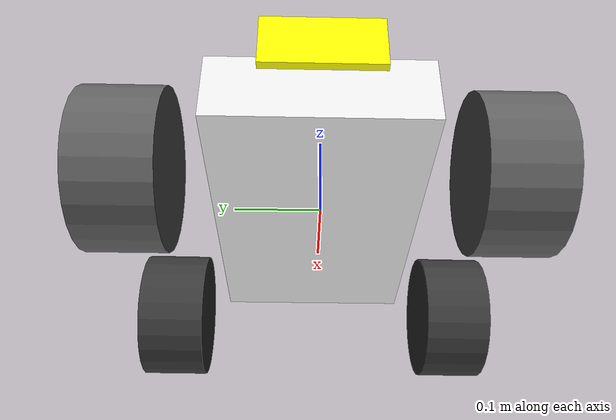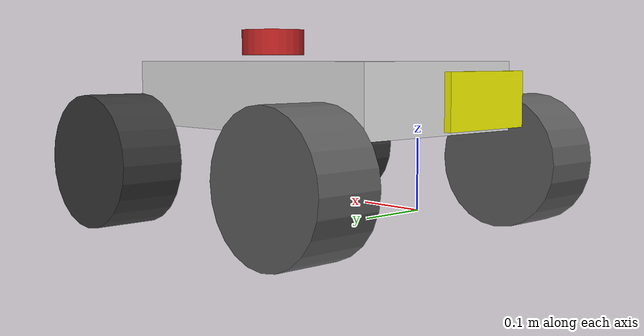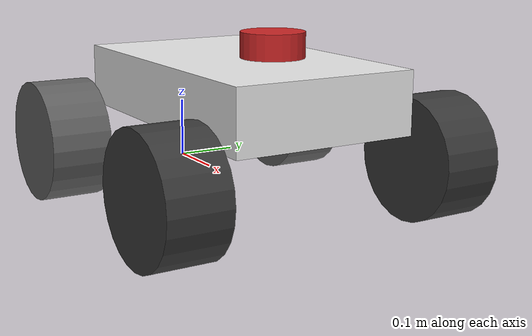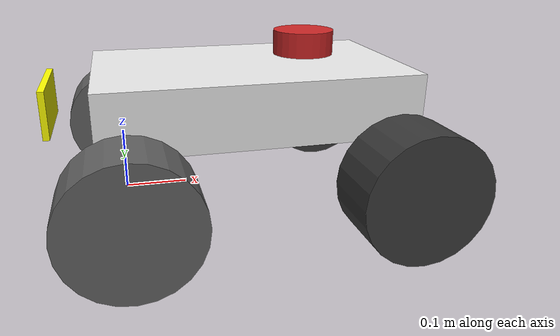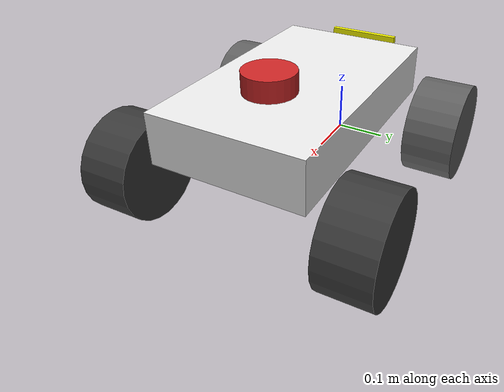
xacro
<?xml version="1.0"?>
<!-- URDF of Robot Simulation -->
<robot xmlns:xacro="http://www.ros.org/wiki/xacro"  name="ackerman_drive">
    <!-- Physical Description -->
    <xacro:include filename="bot_base.xacro" />
    <!-- Simulation -->
    <xacro:include filename="gz_ackermann_core.xacro" />
    <!-- lidar -->
    <xacro:include filename="lidar.xacro" />
</robot>

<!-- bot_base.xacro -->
<robot xmlns:xacro="http://www.ros.org/wiki/xacro">

    <xacro:property name="body_mass" value="0.7" />
    <xacro:property name="body_width" value="0.3" />
    <xacro:property name="body_length" value="0.10" />
    <xacro:property name="body_depth" value="0.75" />

    <xacro:property name="wheel_radius" value="0.1" />
    <xacro:property name="wheel_thickness" value="0.1" />
    <xacro:property name="wheel_mass" value="0.3" />
    <xacro:property name="steering_mass" value="0.01" />

    <!-- BASE -->
    <link name="base_footprint">
            <origin xyz="0 0 0" rpy="0 0 0" />
    </link>

    <link name="base_link">
    </link>
    <joint name="base_joint" type="fixed">
        <parent link="base_footprint" />
        <child link="base_link" />
        <origin xyz="0.0 0.0 0.0" rpy="0 0 0" />
    </joint>

    <link name="chassis_link">
        <inertial>
            <origin xyz="0.0374140021041951 -0.000373005187591258 -0.0771282894414029" rpy="0 0 0" />
            <mass value="24.73" />
            <inertia ixx="${body_mass/12 * (body_width*body_width + body_length*body_length)}"
                ixy="0" ixz="0"
                iyy="${body_mass/12 * (body_length*body_length + body_depth*body_depth)}" iyz="0"
                izz="${body_mass/12 * (body_width*body_width + body_depth*body_depth)}" />
        </inertial>
        <visual>
            <origin xyz="0 0 0" rpy="0 0 0" />
            <geometry>
                <box size="0.5 0.3 0.10" />
            </geometry>
        </visual>
        <collision>
            <origin xyz="0.07 0 -0.05" rpy="0 0 0" />
            <geometry>
                <box size="0.5 0.3 0.10" />
            </geometry>
        </collision>
    </link>
    <joint name="chassis_joint" type="fixed">
        <parent link="base_link" />
        <child link="chassis_link" />
        <origin xyz="0.2078 0.0 0.1555" rpy="0 0 0" />
    </joint>

    <!-- FRONT LEFT WHEEL -->
    <link name="fr_left_steer_link">
        <inertial>
            <origin xyz="-0.0002776492198312 0.0163539773588368 4.97346169803237E-09" rpy="0 0 0" />
            <mass value="${steering_mass}" />
            <inertia
                ixx="${steering_mass/12*(3*wheel_radius*wheel_radius + wheel_thickness*wheel_thickness)}"
                ixy="0" ixz="0"
                iyy="${steering_mass/12*(3*wheel_radius*wheel_radius + wheel_thickness*wheel_thickness)}"
                iyz="0" izz="${steering_mass/2 * wheel_radius*wheel_radius}" />
        </inertial>
    </link>

    <joint name="fr_left_steer_joint" type="revolute">
        <origin xyz="0.2 0.23 -0.1" rpy="0 0 0" />
        <parent link="chassis_link" />
        <child link="fr_left_steer_link" />
        <axis xyz="0 0 1" />
        <limit upper="0.6" lower="-0.6" effort="-1.0" velocity="-1.0" />
    </joint>

    <link name="fr_left_wheel_link">
        <inertial>
            <origin xyz="-3.5837499634539E-10 4.97346158701006E-09 -0.016356334080185" rpy="0 0 0" />
            <mass value="${wheel_mass}" />
            <inertia
                ixx="${wheel_mass/12*(3*wheel_radius*wheel_radius + wheel_thickness*wheel_thickness)}"
                ixy="0" ixz="0"
                iyy="${wheel_mass/12*(3*wheel_radius*wheel_radius + wheel_thickness*wheel_thickness)}"
                iyz="0" izz="${wheel_mass/2 * wheel_radius*wheel_radius}" />
        </inertial>
        <visual>
            <origin xyz="0 0 0" rpy="0 0 0" />
            <geometry>
                <cylinder radius="${wheel_radius}" length="${wheel_thickness}" />
            </geometry>
            <material name="">
                <color rgba="0.223529411764706 0.223529411764706 0.223529411764706 1" />
            </material>
        </visual>
        <collision>
            <origin xyz="0 0 0" rpy="0 0 0" />
            <geometry>
                <cylinder radius="${wheel_radius}" length="${wheel_thickness}" />
            </geometry>
        </collision>
    </link>

    <joint name="fr_left_wheel_joint" type="continuous">
        <origin xyz="0 0 0" rpy="1.5708 0 0.016976" />
        <parent link="fr_left_steer_link" />
        <child link="fr_left_wheel_link" />
        <axis xyz="0 0 -1" />
        <dynamics friction="0.1" damping="0.2" />
        <limit lower="-3.14159" upper="3.14159" effort="200" velocity="-1" />

    </joint>

    <!-- FRONT RIGHT WHEEL -->
    <link name="fr_right_steer_link">
        <inertial>
            <origin xyz="0.000274981985673328 -0.0163540222836661 -3.24802407192237E-11" rpy="0 0 0" />
            <mass value="${steering_mass}" />
            <inertia
                ixx="${steering_mass/12*(3*wheel_radius*wheel_radius + wheel_thickness*wheel_thickness)}"
                ixy="0" ixz="0"
                iyy="${steering_mass/12*(3*wheel_radius*wheel_radius + wheel_thickness*wheel_thickness)}"
                iyz="0" izz="${steering_mass/2 * wheel_radius*wheel_radius}" />
        </inertial>
    </link>
    <joint name="fr_right_steer_joint" type="revolute">
        <origin xyz="0.2 -0.23 -0.1" rpy="0 0 0" />
        <parent link="chassis_link" />
        <child link="fr_right_steer_link" />
        <axis xyz="0 0 1" />
        <limit upper="0.6" lower="-0.6" effort="-1.0" velocity="-1.0" />
    </joint>
    <link name="fr_right_wheel_link">
        <inertial>
            <origin xyz="0.00027498198567355 3.24801296969213E-11 -0.0163540222836661" rpy="0 0 0" />
            <mass value="${wheel_mass}" />
            <inertia
                ixx="${wheel_mass/12*(3*wheel_radius*wheel_radius + wheel_thickness*wheel_thickness)}"
                ixy="0" ixz="0"
                iyy="${wheel_mass/12*(3*wheel_radius*wheel_radius + wheel_thickness*wheel_thickness)}"
                iyz="0" izz="${wheel_mass/2 * wheel_radius*wheel_radius}" />
        </inertial>
        <visual>
            <origin xyz="0 0 0" rpy="0 0 0" />
            <geometry>
                <cylinder radius="${wheel_radius}" length="${wheel_thickness}" />
            </geometry>
            <material name="">
                <color rgba="0.223529411764706 0.223529411764706 0.223529411764706 1" />
            </material>
        </visual>
        <collision>
            <origin xyz="0 0 0" rpy="0 0 0" />
            <geometry>
                <cylinder radius="${wheel_radius}" length="${wheel_thickness}" />
            </geometry>
        </collision>
    </link>
    <joint name="fr_right_wheel_joint" type="continuous">
        <origin xyz="0 0 0" rpy="-1.5708 0 0.016976" />
        <parent link="fr_right_steer_link" />
        <child link="fr_right_wheel_link" />
        <axis xyz="0 0 1" />
        <dynamics friction="0.1" damping="0.2" />
        <limit lower="-3.14159" upper="3.14159" effort="200" velocity="-1" />

    </joint>

    <!-- REAR LEFT WHEEL -->
    <link name="re_left_wheel_link">
        <inertial>
            <origin xyz="1.245E-09 1.7252E-06 -0.010284" rpy="0 0 0" />
            <mass value="${wheel_mass}" />
            <inertia
                ixx="${wheel_mass/12*(3*wheel_radius*wheel_radius + wheel_thickness*wheel_thickness)}"
                ixy="0" ixz="0"
                iyy="${wheel_mass/12*(3*wheel_radius*wheel_radius + wheel_thickness*wheel_thickness)}"
                iyz="0" izz="${wheel_mass/2 * wheel_radius*wheel_radius}" />
        </inertial>
        <visual>
            <origin xyz="0 0 0" rpy="0 0 0" />
            <geometry>
                <cylinder radius="${wheel_radius}" length="${wheel_thickness}" />
            </geometry>
            <material name="">
                <color rgba="0.37647 0.37647 0.37647 1" />
            </material>
        </visual>
        <collision>
            <origin xyz="0 0 0" rpy="0 0 0" />
            <geometry>
                <cylinder radius="${wheel_radius}" length="${wheel_thickness}" />
            </geometry>
        </collision>
    </link>
    <joint name="re_left_wheel_joint" type="continuous">
        <origin xyz="-0.2078 0.23 -0.1" rpy="1.5708 0 0" />
        <parent link="chassis_link" />
        <child link="re_left_wheel_link" />
        <axis xyz="0 0 -1" />
        <dynamics friction="0.1" damping="0.2" />
        <limit lower="-3.14159" upper="3.14159" effort="70" velocity="-1" />

    </joint>

    <!-- REAR RIGHT WHEEL -->
    <link name="re_right_wheel_link">
        <inertial>
            <origin xyz="0 0 0" rpy="0 0 0" />
            <mass value="${wheel_mass}" />
            <inertia
                ixx="${wheel_mass/12*(3*wheel_radius*wheel_radius + wheel_thickness*wheel_thickness)}"
                ixy="0" ixz="0"
                iyy="${wheel_mass/12*(3*wheel_radius*wheel_radius + wheel_thickness*wheel_thickness)}"
                iyz="0" izz="${wheel_mass/2 * wheel_radius*wheel_radius}" />
        </inertial>
        <visual>
            <origin xyz="0 0 0" rpy="0 0 0" />
            <geometry>
                <cylinder radius="${wheel_radius}" length="${wheel_thickness}" />
            </geometry>
            <material name="">
                <color rgba="0.37647 0.37647 0.37647 1" />
            </material>
        </visual>
        <collision>
            <origin xyz="0 0 0" rpy="0 0 0" />
            <geometry>
                <cylinder radius="${wheel_radius}" length="${wheel_thickness}" />
            </geometry>
        </collision>
    </link>
    <joint name="re_right_wheel_joint" type="continuous">
        <origin xyz="-0.2078 -0.23 -0.1" rpy="-1.5708 0 0" />
        <parent link="chassis_link" />
        <child link="re_right_wheel_link" />
        <axis xyz="0 0 1" />

        <dynamics friction="0.1" damping="0.2" />
        <limit lower="-3.14159" upper="3.14159" effort="70" velocity="-1" />

    </joint>
</robot>

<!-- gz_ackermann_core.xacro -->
<robot xmlns:xacro="http://www.ros.org/wiki/xacro">
    <!-- GAZEBO COLOUR -->
    <!-- Instead, we need to add gazebo tags for our links that refer to Gazebo materials -->
    <gazebo reference="chassis_link">
        <material>Gazebo/White</material>
        <mu1>0.5</mu1>
        <mu2>0.5</mu2>
    </gazebo>
    <gazebo reference="fr_left_wheel_link">
        <material>Gazebo/Grey</material>
        <mu1>1</mu1>
        <mu2>1</mu2>
    </gazebo>
    <gazebo reference="fr_right_wheel_link">
        <material>Gazebo/Grey</material>
        <mu1>1</mu1>
        <mu2>1</mu2>
    </gazebo>
    <gazebo reference="re_left_wheel_link">
        <material>Gazebo/Grey</material>
        <mu1>1</mu1>
        <mu2>1</mu2>
    </gazebo>
    <gazebo reference="re_right_wheel_link">
        <material>Gazebo/Grey</material>
        <mu1>1</mu1>
        <mu2>1</mu2>
    </gazebo>
    <gazebo reference="virtual_steer_link">
        <material>Gazebo/Yellow</material>
    </gazebo>

    <!-- JOINT STATE PUBLISHER -->
    <!-- Gazebo requires the use of plugins to interact with other systems such as ROS. -->
    <gazebo>
        <plugin name="gazebo_ros_joint_state_publisher"
            filename="libgazebo_ros_joint_state_publisher.so">
            <update_rate>100</update_rate>
            <joint_name>fr_right_steer_joint</joint_name>
            <joint_name>fr_right_wheel_joint</joint_name>
            <joint_name>fr_left_steer_joint</joint_name>
            <joint_name>fr_left_wheel_joint</joint_name>
            <joint_name>re_right_wheel_joint</joint_name>
            <joint_name>re_left_wheel_joint</joint_name>
            <joint_name>virtual_steering_wheel_joint</joint_name>
        </plugin>
    </gazebo>

    <!-- This plugin will read a JointTrajectory message from the /set_joint_trajectory topic
            and move the machine accordingly. It's a bit clunky but it works. -->
    <gazebo>
        <plugin name="gazebo_ros_joint_pose_trajectory"
            filename="libgazebo_ros_joint_pose_trajectory.so">
            <update_rate>4</update_rate>
        </plugin>
    </gazebo>

    <!-- ACKERMANN DRIVE PLUGIN -->
    <gazebo>
        <plugin name='gazebo_ackermann_drive' filename='libgazebo_ros_ackermann_drive.so'>
            <ros>
            </ros>

            <update_rate>100.0</update_rate>

            <!-- wheels -->
            <front_left_joint>fr_left_wheel_joint</front_left_joint>
            <front_right_joint>fr_right_wheel_joint</front_right_joint>
            <rear_left_joint>re_left_wheel_joint</rear_left_joint>
            <rear_right_joint>re_right_wheel_joint</rear_right_joint>
            <left_steering_joint>fr_left_steer_joint</left_steering_joint>
            <right_steering_joint>fr_right_steer_joint</right_steering_joint>
            <steering_wheel_joint>virtual_steering_wheel_joint</steering_wheel_joint>

            <!-- Max absolute steer angle for tyre in radians-->
            <!-- Any cmd_vel angular z greater than this would be capped -->
            <max_steer>0.5</max_steer>

            <!-- Max absolute steering angle of steering wheel -->
            <max_steering_angle>2.</max_steering_angle>

            <!-- Max absolute linear speed in m/s -->
            <max_speed>10</max_speed>

            <!-- PID tuning -->
            <left_steering_pid_gain>10 0 0.1</left_steering_pid_gain>
            <left_steering_i_range>0 0</left_steering_i_range>
            <right_steering_pid_gain>10 0 0.1</right_steering_pid_gain>
            <right_steering_i_range>0 0</right_steering_i_range>
            <linear_velocity_pid_gain>1550 0 0.1</linear_velocity_pid_gain>
            <linear_velocity_i_range>0 0</linear_velocity_i_range>

            <!-- output -->
            <publish_odom>true</publish_odom>
            <publish_odom_tf>true</publish_odom_tf>     <!-- Don't pubslish this when using robot
            localization -->
            <publish_wheel_tf>false</publish_wheel_tf>  <!-- Don't publish this. It will override all
            wheel frames to robot_base_frame parameter below.-->
            <publish_distance>true</publish_distance>

            <odometry_frame>odom</odometry_frame>
            <robot_base_frame>base_footprint</robot_base_frame>

        </plugin>
    </gazebo>

    <!-- Virtual Steering wheel -->
    <link name="virtual_steer_link">
        <visual>
            <origin xyz="0.0 0.0 0.0" rpy="0.0 0.0 0.0" />
            <geometry>
                <box size="0.01 0.15 0.075" />
            </geometry>
            <material name="">
                <color rgba="1.0 1.0 0.0 1" />
            </material>
        </visual>
        <inertial>  <!-- Gazebo won't show this link without this inertial mass -->
            <origin xyz="0.0 0.0 0.0" rpy="0.0 0.0 0.0" />
            <mass value="0.001" />
            <inertia ixx="0.0" ixy="0.0" ixz="0.0" iyy="0.0" iyz="0.0" izz="0.0" />
        </inertial>
    </link>
    <joint name="virtual_steering_wheel_joint" type="revolute">
        <origin xyz="-0.32 0.0 0.0" rpy="0.0 0.0 0.0" />
        <parent link="chassis_link" />
        <child link="virtual_steer_link" />
        <axis xyz="-1 0 0" />
        <limit lower="-3" upper="3" effort="200" velocity="20" />
    </joint>

</robot>

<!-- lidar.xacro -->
<robot xmlns:xacro="http://www.ros.org/wiki/xacro">

    <xacro:include filename="inertial_macros.xacro"/>

    <!-- lidar joint -->
    <joint name="laser_joint" type="fixed">
        <parent link="chassis_link"/>
        <child link="laser_link"/>
        <origin xyz="0.1 0 0.08" rpy="0 0 0"/>
    </joint>

    <!-- laser_frame -->
    <link name="laser_link">
        <visual>
            <geometry>
                <cylinder radius="0.05" length="0.04"/>
            </geometry>
        </visual>
        <collision>
            <geometry>
                <cylinder radius="0.05" length="0.04"/>
            </geometry>
        </collision>
        <xacro:inertial_cylinder mass="0.1" length="0.04" radius="0.05">
            <origin xyz="0 0 0" rpy="0 0 0"/>
        </xacro:inertial_cylinder>
    </link>

    <gazebo reference="laser_link">
        <material>Gazebo/Red</material>
        <sensor name="laser" type="ray">
            <pose>0 0 0 0 0 0</pose>
            <visualize>false</visualize>
            <update_rate>10</update_rate>
            <ray>
                <scan>
                    <horizontal>
												<!--samples> is the number of simulated lidar rays to generate per complete laser sweep cycle.-->
                        <samples>360</samples>
												<!--resolution>: this number is multiplied by samples to determine the number range data points.-->
                        <resolution>1</resolution>
							          <min_angle>-3.14</min_angle>
                        <max_angle>3.14</max_angle>
                    </horizontal>
                </scan>
                <range>
                    <min>0.3</min>
                    <max>12</max>
                    <resolution>0.01</resolution>
                </range>
            </ray>
            <plugin name="laser_controller" filename="libgazebo_ros_ray_sensor.so">
                <ros>
                    <remapping>~/out:=scan</remapping>
                </ros>
                <output_type>sensor_msgs/LaserScan</output_type>
                <frame_name>laser_frame</frame_name>
            </plugin>
        </sensor>
    </gazebo>

</robot>
